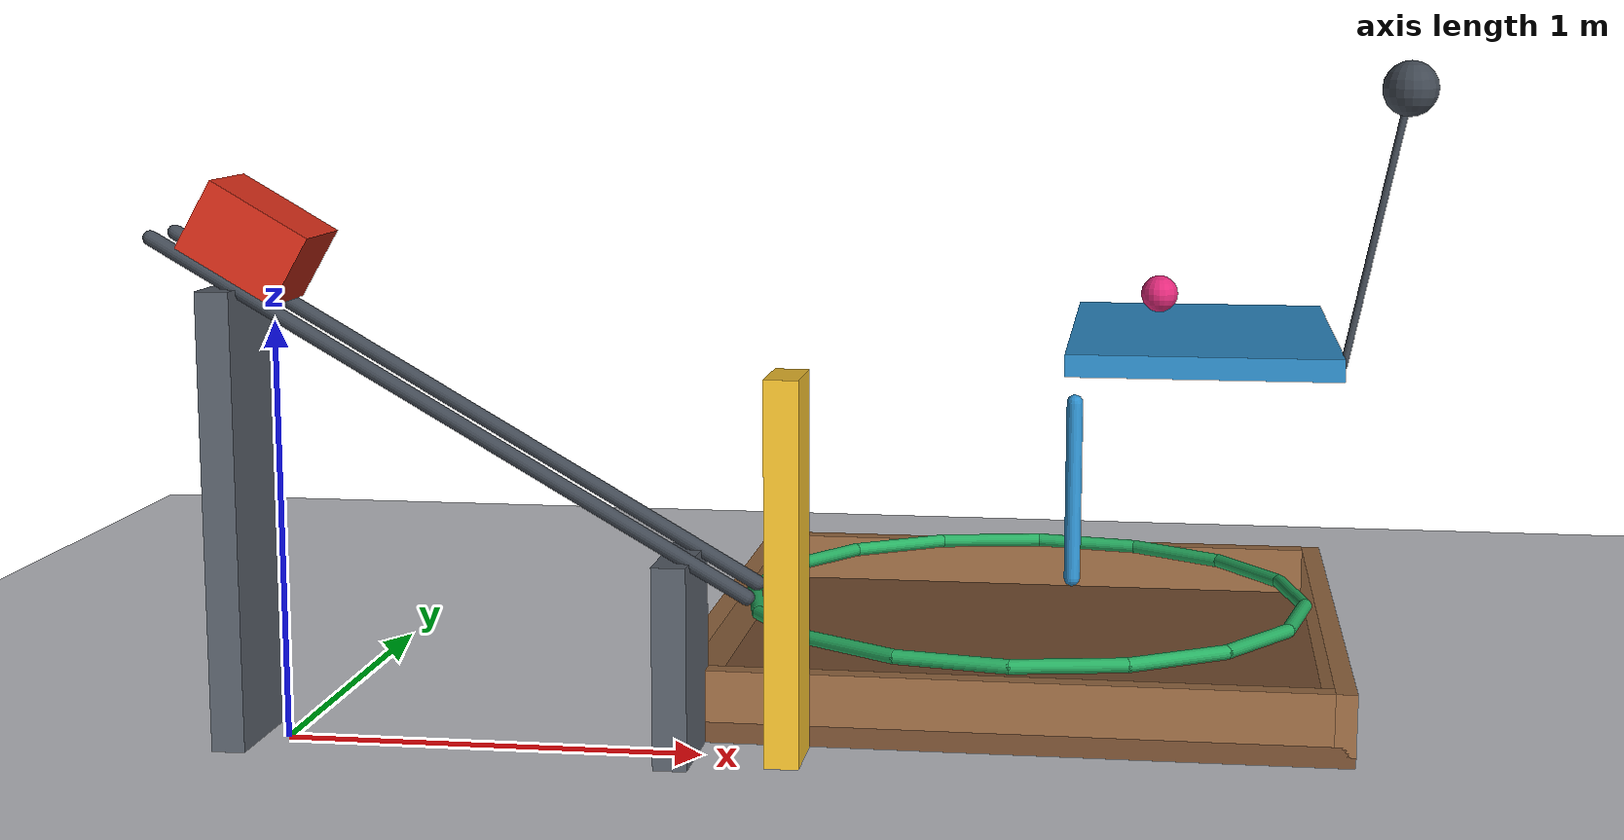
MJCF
<mujoco model="cart_domino_flap_ball">
  <compiler angle="radian" autolimits="true"/>
  <option timestep="0.002" gravity="0 0 -9.81" integrator="implicitfast" solver="Newton" iterations="100" cone="elliptic"/>
  <size njmax="2000" nconmax="300"/>
  <visual>
    <headlight ambient="0.35 0.35 0.35" diffuse="0.7 0.7 0.7" specular="0.2 0.2 0.2"/>
  </visual>

  <worldbody>
    <light name="overhead" pos="0 0 4" dir="0 0 -1" diffuse="0.8 0.8 0.8"/>
    <camera name="overview" pos="4.2 -5.0 3.3" xyaxes="0.85 0.53 0 -0.25 0.40 0.88"/>
    <geom name="floor" type="plane" size="5 5 0.1" rgba="0.78 0.79 0.81 1" friction="1 0.01 0.005" solref="0.012 1"/>

    <body name="rail">
      <geom name="rail_left" type="capsule" fromto="-0.264019 -0.075 1.196469 1.12 -0.075 0.397406" size="0.018" rgba="0.25 0.28 0.32 1" friction="0.05 0.001 0.001"/>
      <geom name="rail_right" type="capsule" fromto="-0.264019 0.075 1.196469 1.12 0.075 0.397406" size="0.018" rgba="0.25 0.28 0.32 1" friction="0.05 0.001 0.001"/>
      <geom name="rail_upper_support" type="box" pos="-0.1 0 0.541" size="0.04 0.14 0.541" rgba="0.35 0.38 0.42 1"/>
      <geom name="rail_lower_support" type="box" pos="0.95 0 0.237" size="0.04 0.14 0.237" rgba="0.35 0.38 0.42 1"/>
    </body>

    <body name="cart" pos="-0.036814 0 1.19">
      <joint name="cart_slide" type="slide" axis="0.866025404 0 -0.5" range="0 1.32" damping="4" solreflimit="0.01 1"/>
      <geom name="cart_chassis" type="box" quat="0.965925826 0 0.258819045 0" size="0.13 0.11 0.09" mass="1.2" rgba="0.85 0.18 0.10 1" friction="0.25 0.005 0.001" solref="0.012 1" solimp="0.95 0.99 0.001"/>
    </body>

    <body name="domino" pos="1.2 0 0.45">
      <freejoint name="domino_free"/>
      <geom name="domino_block" type="box" size="0.04 0.09 0.45" mass="0.45" rgba="0.96 0.76 0.18 1" condim="4" friction="0.15 0.005 0.001" solref="0.012 1" solimp="0.95 0.99 0.001"/>
    </body>

    <body name="flap" pos="2.43 0 0.95">
      <joint name="flap_hinge" type="hinge" axis="0 1 0" range="-1.25 0" damping="0.06" frictionloss="0.005" solreflimit="0.008 1" solimplimit="0.95 0.99 0.001"/>
      <geom name="flap_plate" type="box" pos="-0.3 0.37 0" size="0.3 0.49 0.025" mass="0.15" rgba="0.18 0.56 0.80 1" friction="0.2 0.005 0.001" solref="0.012 1" solimp="0.95 0.99 0.001"/>
      <geom name="flap_striker" type="capsule" fromto="-0.58 0 -0.5 -0.58 0 -0.1" size="0.018" mass="0.025" rgba="0.18 0.56 0.80 1" friction="0.2 0.005 0.001" solref="0.012 1" solimp="0.95 0.99 0.001"/>
      <geom name="flap_counterweight_arm" type="capsule" fromto="0 -0.05 0 0.12 -0.05 0.6" size="0.008" mass="0.01" rgba="0.25 0.28 0.32 1" friction="0.2 0.005 0.001"/>
      <geom name="flap_counterweight" type="sphere" pos="0.12 -0.05 0.6" size="0.06" mass="0.7" rgba="0.25 0.28 0.32 1" friction="0.2 0.005 0.001"/>
    </body>

    <body name="ball" pos="2.03 0.68 1.02">
      <freejoint name="ball_free"/>
      <geom name="ball_sphere" type="sphere" size="0.045" mass="0.04" rgba="0.88 0.16 0.48 1" condim="6" friction="1 0.01 0.008" solref="0.012 1" solimp="0.95 0.99 0.001"/>
    </body>

    <body name="ring" pos="1.7 0.9 0.19">
      <geom name="ring_01" type="capsule" fromto="0.72 0 0 0.665193 0.275532 0" size="0.018" rgba="0.15 0.68 0.38 1"/>
      <geom name="ring_02" type="capsule" fromto="0.665193 0.275532 0 0.509117 0.509117 0" size="0.018" rgba="0.15 0.68 0.38 1"/>
      <geom name="ring_03" type="capsule" fromto="0.509117 0.509117 0 0.275532 0.665193 0" size="0.018" rgba="0.15 0.68 0.38 1"/>
      <geom name="ring_04" type="capsule" fromto="0.275532 0.665193 0 0 0.72 0" size="0.018" rgba="0.15 0.68 0.38 1"/>
      <geom name="ring_05" type="capsule" fromto="0 0.72 0 -0.275532 0.665193 0" size="0.018" rgba="0.15 0.68 0.38 1"/>
      <geom name="ring_06" type="capsule" fromto="-0.275532 0.665193 0 -0.509117 0.509117 0" size="0.018" rgba="0.15 0.68 0.38 1"/>
      <geom name="ring_07" type="capsule" fromto="-0.509117 0.509117 0 -0.665193 0.275532 0" size="0.018" rgba="0.15 0.68 0.38 1"/>
      <geom name="ring_08" type="capsule" fromto="-0.665193 0.275532 0 -0.72 0 0" size="0.018" rgba="0.15 0.68 0.38 1"/>
      <geom name="ring_09" type="capsule" fromto="-0.72 0 0 -0.665193 -0.275532 0" size="0.018" rgba="0.15 0.68 0.38 1"/>
      <geom name="ring_10" type="capsule" fromto="-0.665193 -0.275532 0 -0.509117 -0.509117 0" size="0.018" rgba="0.15 0.68 0.38 1"/>
      <geom name="ring_11" type="capsule" fromto="-0.509117 -0.509117 0 -0.275532 -0.665193 0" size="0.018" rgba="0.15 0.68 0.38 1"/>
      <geom name="ring_12" type="capsule" fromto="-0.275532 -0.665193 0 0 -0.72 0" size="0.018" rgba="0.15 0.68 0.38 1"/>
      <geom name="ring_13" type="capsule" fromto="0 -0.72 0 0.275532 -0.665193 0" size="0.018" rgba="0.15 0.68 0.38 1"/>
      <geom name="ring_14" type="capsule" fromto="0.275532 -0.665193 0 0.509117 -0.509117 0" size="0.018" rgba="0.15 0.68 0.38 1"/>
      <geom name="ring_15" type="capsule" fromto="0.509117 -0.509117 0 0.665193 -0.275532 0" size="0.018" rgba="0.15 0.68 0.38 1"/>
      <geom name="ring_16" type="capsule" fromto="0.665193 -0.275532 0 0.72 0 0" size="0.018" rgba="0.15 0.68 0.38 1"/>
    </body>

    <body name="box" pos="1.7 0.9 0">
      <geom name="box_bottom" type="box" pos="0 0 0.025" size="0.8 0.8 0.025" rgba="0.48 0.32 0.20 1" condim="6" friction="1 0.01 0.008" solref="0.012 1" solimp="0.95 0.99 0.001"/>
      <geom name="box_left_wall" type="box" pos="-0.775 0 0.1" size="0.025 0.8 0.075" rgba="0.62 0.43 0.27 1" condim="6" friction="1 0.01 0.008" solref="0.012 1"/>
      <geom name="box_right_wall" type="box" pos="0.775 0 0.1" size="0.025 0.8 0.075" rgba="0.62 0.43 0.27 1" condim="6" friction="1 0.01 0.008" solref="0.012 1"/>
      <geom name="box_front_wall" type="box" pos="0 -0.775 0.1" size="0.75 0.025 0.075" rgba="0.62 0.43 0.27 1" condim="6" friction="1 0.01 0.008" solref="0.012 1"/>
      <geom name="box_back_wall" type="box" pos="0 0.775 0.1" size="0.75 0.025 0.075" rgba="0.62 0.43 0.27 1" condim="6" friction="1 0.01 0.008" solref="0.012 1"/>
    </body>
  </worldbody>

  <contact>
    <exclude name="ideal_rail_guidance" body1="rail" body2="cart"/>
  </contact>

  <keyframe>
    <key name="start" qpos="0 1.2 0 0.45 1 0 0 0 0 2.03 0.68 1.02 1 0 0 0"/>
  </keyframe>
</mujoco>
